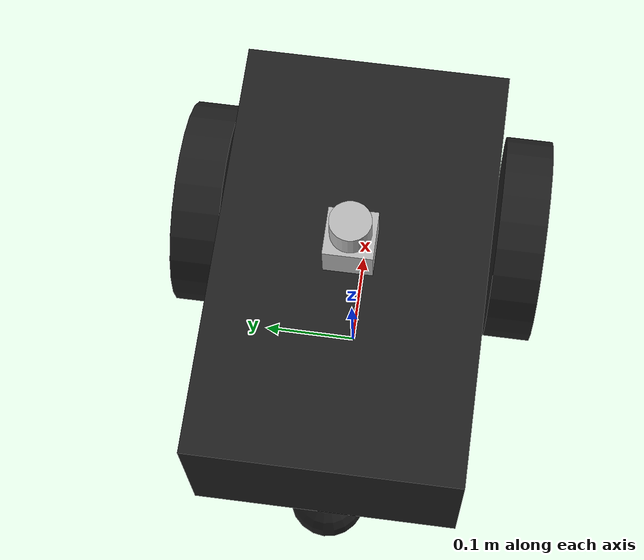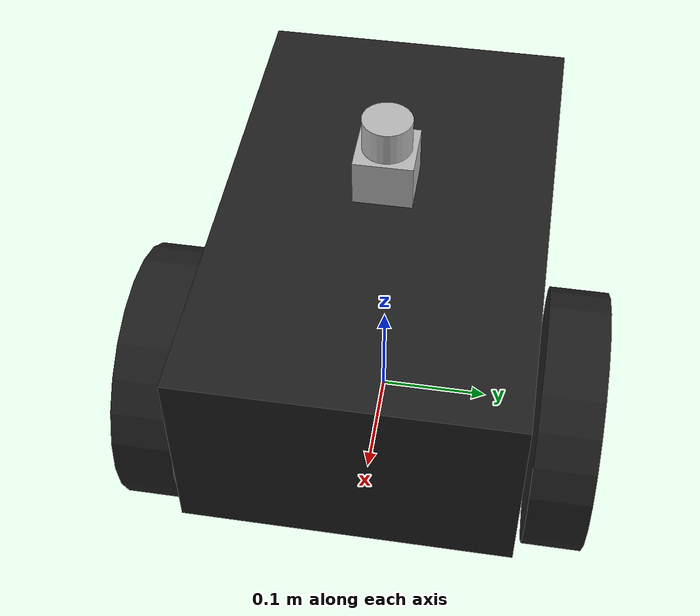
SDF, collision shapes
<?xml version="1.0" ?>
<sdf version="1.5">
  <model name="pioneer2dx">
    <link name="chassis">
      <pose>0 0 0.16 0 0 0</pose>
      <inertial>
        <mass>5.67</mass>
        <inertia>
          <ixx>0.07</ixx>
          <iyy>0.08</iyy>
          <izz>0.10</izz>
          <ixy>0</ixy>
          <ixz>0</ixz>
          <iyz>0</iyz>
        </inertia>
      </inertial>
      <collision name="collision">
        <geometry>
          <box>
            <size>0.445 0.277 0.17</size>
          </box>
        </geometry>
      </collision>
      <collision name="castor_collision">
        <pose>-0.200 0 -0.12 0 0 0</pose>
        <geometry>
          <sphere>
            <radius>0.04</radius>
          </sphere>
        </geometry>
        <surface>
          <friction>
            <ode>
              <mu>0</mu>
              <mu2>0</mu2>
              <slip1>1.0</slip1>
              <slip2>1.0</slip2>
            </ode>
          </friction>
        </surface>
      </collision>
      <visual name="visual">
        <pose>0 0 0.04 0 0 0</pose>
        <geometry>
          <mesh>
            <uri>model://pioneer2dx_description/models/robot/meshes/chassis.dae</uri>
          </mesh>
        </geometry>
      </visual>
      <visual name="castor_visual">
        <pose>-0.200 0 -0.12 0 0 0</pose>
        <geometry>
          <sphere>
            <radius>0.04</radius>
          </sphere>
        </geometry>
        <material>
          <script>
            <uri>file://media/materials/scripts/gazebo.material</uri>
            <name>Gazebo/FlatBlack</name>
          </script>
        </material>
      </visual>
    </link>
    <link name="right_wheel">
      <pose>0.1 -.17 0.11 0 1.5707 1.5707</pose>
      <inertial>
        <mass>1.5</mass>
        <inertia>
          <ixx>0.0051</ixx>
          <iyy>0.0051</iyy>
          <izz>0.0090</izz>
          <ixy>0</ixy>
          <ixz>0</ixz>
          <iyz>0</iyz>
        </inertia>
      </inertial>
      <collision name="collision">
        <geometry>
          <cylinder>
            <radius>0.11</radius>
            <length>0.05</length>
          </cylinder>
        </geometry>
        <surface>
          <friction>
            <ode>
              <mu>100000.0</mu>
              <mu2>100000.0</mu2>
              <slip1>0.0</slip1>
              <slip2>0.0</slip2>
            </ode>
          </friction>
        </surface>
      </collision>
      <visual name="visual">
        <geometry>
          <cylinder>
            <radius>0.11</radius>
            <length>0.05</length>
          </cylinder>
        </geometry>
        <material>
          <script>
            <uri>file://media/materials/scripts/gazebo.material</uri>
            <name>Gazebo/FlatBlack</name>
          </script>
        </material>
      </visual>
    </link>
    <link name="left_wheel">
      <pose>0.1 .17 0.11 0 1.5707 1.5707</pose>
      <inertial>
        <mass>1.5</mass>
        <inertia>
          <ixx>0.0051</ixx>
          <iyy>0.0051</iyy>
          <izz>0.0090</izz>
          <ixy>0</ixy>
          <ixz>0</ixz>
          <iyz>0</iyz>
        </inertia>
      </inertial>
      <collision name="collision">
        <geometry>
          <cylinder>
            <radius>0.11</radius>
            <length>0.05</length>
          </cylinder>
        </geometry>
        <surface>
          <friction>
            <ode>
              <mu>100000.0</mu>
              <mu2>100000.0</mu2>
              <slip1>0.0</slip1>
              <slip2>0.0</slip2>
            </ode>
          </friction>
        </surface>
      </collision>
      <visual name="visual">
        <geometry>
          <cylinder>
            <radius>0.11</radius>
            <length>0.05</length>
          </cylinder>
        </geometry>
        <material>
          <script>
            <uri>file://media/materials/scripts/gazebo.material</uri>
            <name>Gazebo/FlatBlack</name>
          </script>
        </material>
      </visual>
    </link>
    <joint type="revolute" name="left_wheel_hinge">
      <pose>0 0 -0.03 0 0 0</pose>
      <child>left_wheel</child>
      <parent>chassis</parent>
      <axis>
        <xyz>0 1 0</xyz>
        <use_parent_model_frame>true</use_parent_model_frame>
      </axis>
    </joint>
    <joint type="revolute" name="right_wheel_hinge">
      <pose>0 0 0.03 0 0 0</pose>
      <child>right_wheel</child>
      <parent>chassis</parent>
      <axis>
        <xyz>0 1 0</xyz>
        <use_parent_model_frame>true</use_parent_model_frame>
      </axis>
    </joint>
    <include>
       <uri>model://pioneer2dx_description/models/UTM_30LX</uri>
       <name>laser</name>
       <pose>0.0 0.0 0.30 0 0 0</pose>
       <static>false</static>
    </include>
    <joint name="chassis_laser_joint" type="fixed" >
      <pose frame="chassis">0.0 0.0 0.30 0 0 0</pose>
      <child>laser::link</child>
      <parent>chassis</parent>
    </joint>

    <plugin name='differential_drive_controller' filename='libgazebo_ros_diff_drive.so'>
      <legacyMode>false</legacyMode>
      <rosDebugLevel>Debug</rosDebugLevel>
      <publishWheelTF>false</publishWheelTF>
      <publishTf>1</publishTf>
      <publishWheelJointState>true</publishWheelJointState>
      <alwaysOn>true</alwaysOn>
      <updateRate>100</updateRate>
      <leftJoint>right_wheel_hinge</leftJoint> <!-- Default gazebo model as the wheels switched -->
      <rightJoint>left_wheel_hinge</rightJoint>
      <wheelSeparation>0.34</wheelSeparation> <!-- This values could be calibrated experimentally -->
      <wheelDiameter>0.22</wheelDiameter>
      <wheelAcceleration>1.8</wheelAcceleration>
      <wheelTorque>5</wheelTorque>
      <odometrySource>world</odometrySource> <!-- Used world (no error) or encoder -->
      <commandTopic>cmd_vel</commandTopic>
      <odometryTopic>odom</odometryTopic>
      <odometryFrame>odom</odometryFrame>
      <robotBaseFrame>chassis</robotBaseFrame>
    </plugin>
  </model>
</sdf>

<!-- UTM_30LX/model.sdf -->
<sdf version="1.5">
  <model name="UTM_30LX">
    <pose>0 0 0.035 0 0 0</pose>
    <link name="link">
      <inertial>
        <mass>0.1</mass>
      </inertial>
      <visual name="visual">
        <geometry>
          <mesh>
            <uri>model://pioneer2dx_description/models/UTM_30LX/meshes/hokuyo.dae</uri>
          </mesh>
        </geometry>
      </visual>
      <collision name="collision-base">
        <pose>0 0 -0.0145 0 0 0</pose>
        <geometry>
          <box>
            <size>0.05 0.05 0.041</size>
          </box>
        </geometry>
      </collision>
      <collision name="collision-top">
        <pose>0 0 0.0205 0 0 0</pose>
        <geometry>
          <cylinder>
            <radius>0.021</radius>
            <length>0.029</length>
          </cylinder>
        </geometry>
      </collision>
      <sensor name="laser" type="ray">
        <pose>0.01 0 0.0175 0 -0 0</pose>
        <ray>
          <scan>
            <horizontal>
              <samples>720</samples>
              <resolution>1</resolution>
              <min_angle>-1.570796</min_angle>
              <max_angle>1.570796</max_angle>
            </horizontal>
          </scan>
          <range>
            <min>0.10</min>
            <max>30</max>
            <resolution>0.01</resolution>
          </range>
        </ray>
        <always_on>1</always_on>
        <update_rate>30</update_rate>
        <visualize>true</visualize>
        <plugin name="gazebo_ros_hokuyo_controller" filename="libgazebo_ros_laser.so">
          <topicName>robot/laser/scan</topicName>
  	  <frameName>laser_link</frameName>
        </plugin>
      </sensor>
    </link>
  </model>
</sdf>
